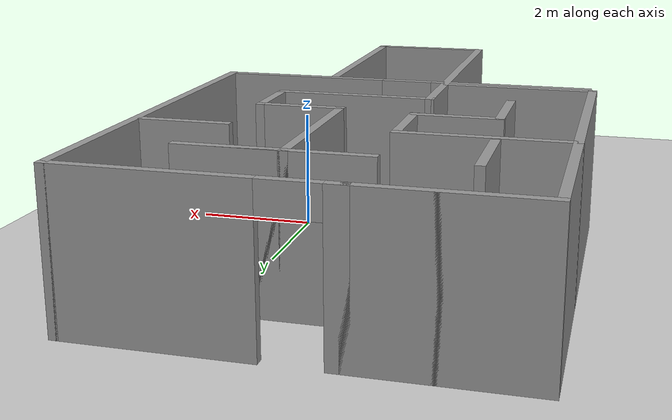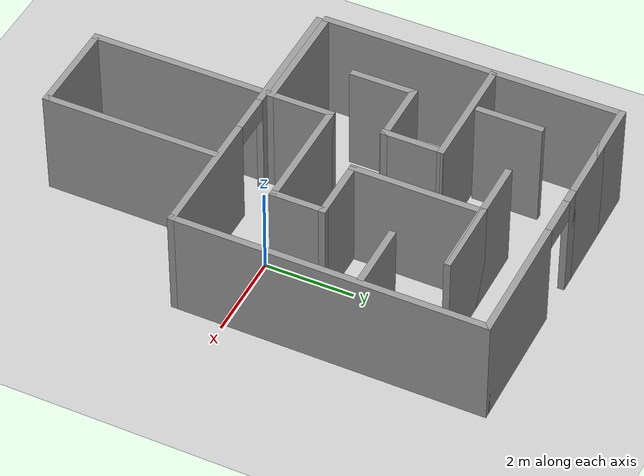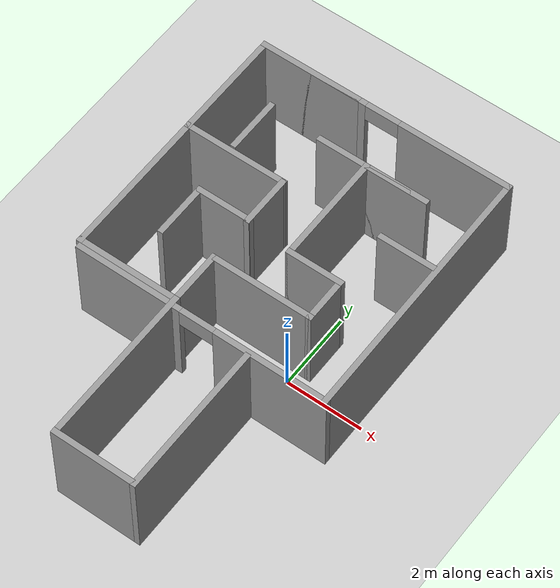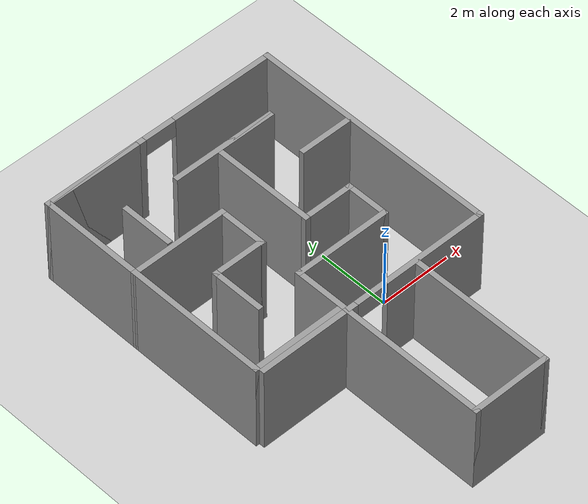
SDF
<sdf version="1.7">
 <world name="default">
  <light name="sun" type="directional">
   <pose>0 0 10 0 -0 0</pose>
   <diffuse>0.8 0.8 0.8 1</diffuse>
   <specular>0.2 0.2 0.2 1</specular>
   <attenuation>
    <range>1000</range>
    <constant>0.9</constant>
    <linear>0.01</linear>
    <quadratic>0.001</quadratic>
   </attenuation>
   <direction>-0.5 0.1 -0.9</direction>
   <spot><inner_angle>0</inner_angle><outer_angle>0</outer_angle><falloff>0</falloff></spot>
  </light>
  <model name="ground_plane">
   <static>1</static>
   <link name="link">
    <collision name="collision">
     <geometry><plane><normal>0 0 1</normal><size>100 100</size></plane></geometry>
     <surface><friction><ode><mu>100</mu><mu2>50</mu2></ode></friction></surface>
    </collision>
    <visual name="visual">
     <cast_shadows>0</cast_shadows>
     <geometry><plane><normal>0 0 1</normal><size>100 100</size></plane></geometry>
     <material>
      <script><uri>file://media/materials/scripts/gazebo.material</uri><name>Gazebo/Grey</name></script>
     </material>
    </visual>
   </link>
  </model>
  <gravity>0 0 -9.8</gravity>
  <magnetic_field>6e-06 2.3e-05 -4.2e-05</magnetic_field>
  <atmosphere type="adiabatic"/>
  <physics type="ode">
   <max_step_size>0.001</max_step_size>
   <real_time_factor>1</real_time_factor>
   <real_time_update_rate>1000</real_time_update_rate>
  </physics>
  <scene><ambient>0.4 0.4 0.4 1</ambient><background>0.7 0.7 0.7 1</background><shadows>1</shadows></scene>
  <audio><device>default</device></audio>
  <spherical_coordinates>
   <surface_model>EARTH_WGS84</surface_model>
   <latitude_deg>0</latitude_deg>
   <longitude_deg>0</longitude_deg>
   <elevation>0</elevation>
   <heading_deg>0</heading_deg>
  </spherical_coordinates>
  <model name="maze.world">
   <pose>-1.53103 0.328624 0 0 -0 0</pose>
   <link name="Wall_0">
    <collision name="Wall_0_Collision">
     <geometry><box><size>2.75 0.15 2.5</size></box></geometry>
     <pose>0 0 1.25 0 -0 0</pose>
    </collision>
    <visual name="Wall_0_Visual">
     <pose>0 0 1.25 0 -0 0</pose>
     <geometry><box><size>2.75 0.15 2.5</size></box></geometry>
     <material>
      <script><uri>file://media/materials/scripts/gazebo.material</uri><name>Gazebo/Grey</name></script>
      <ambient>1 1 1 1</ambient>
     </material>
     <meta><layer>0</layer></meta>
    </visual>
    <pose>-2.04992 5.4 0 0 -0 3.14159</pose>
   </link>
   <link name="Wall_1">
    <collision name="Wall_1_Collision">
     <geometry><box><size>3 0.15 2.5</size></box></geometry>
     <pose>0 0 1.25 0 -0 0</pose>
    </collision>
    <visual name="Wall_1_Visual">
     <pose>0 0 1.25 0 -0 0</pose>
     <geometry><box><size>3 0.15 2.5</size></box></geometry>
     <material>
      <script><uri>file://media/materials/scripts/gazebo.material</uri><name>Gazebo/Grey</name></script>
      <ambient>1 1 1 1</ambient>
     </material>
     <meta><layer>0</layer></meta>
    </visual>
    <pose>-3.34992 3.975 0 0 -0 -1.5708</pose>
   </link>
   <link name="Wall_10">
    <collision name="Wall_10_Collision">
     <geometry><box><size>2.75 0.15 2.5</size></box></geometry>
     <pose>0 0 1.25 0 -0 0</pose>
    </collision>
    <visual name="Wall_10_Visual">
     <pose>0 0 1.25 0 -0 0</pose>
     <geometry><box><size>2.75 0.15 2.5</size></box></geometry>
     <material>
      <script><uri>file://media/materials/scripts/gazebo.material</uri><name>Gazebo/Grey</name></script>
      <ambient>1 1 1 1</ambient>
     </material>
     <meta><layer>0</layer></meta>
    </visual>
    <pose>0.550079 0.05 0 0 -0 0</pose>
   </link>
   <link name="Wall_11">
    <collision name="Wall_11_Collision">
     <geometry><box><size>1.25 0.15 2.5</size></box></geometry>
     <pose>0 0 1.25 0 -0 0</pose>
    </collision>
    <visual name="Wall_11_Visual">
     <pose>0 0 1.25 0 -0 0</pose>
     <geometry><box><size>1.25 0.15 2.5</size></box></geometry>
     <material>
      <script><uri>file://media/materials/scripts/gazebo.material</uri><name>Gazebo/Grey</name></script>
      <ambient>1 1 1 1</ambient>
     </material>
     <meta><layer>0</layer></meta>
    </visual>
    <pose>1.85008 0.6 0 0 -0 1.5708</pose>
   </link>
   <link name="Wall_12">
    <collision name="Wall_12_Collision">
     <geometry><box><size>1.5 0.15 2.5</size></box></geometry>
     <pose>0 0 1.25 0 -0 0</pose>
    </collision>
    <visual name="Wall_12_Visual">
     <pose>0 0 1.25 0 -0 0</pose>
     <geometry><box><size>1.5 0.15 2.5</size></box></geometry>
     <material>
      <script><uri>file://media/materials/scripts/gazebo.material</uri><name>Gazebo/Grey</name></script>
      <ambient>1 1 1 1</ambient>
     </material>
     <meta><layer>0</layer></meta>
    </visual>
    <pose>1.17508 1.15 0 0 -0 3.14159</pose>
   </link>
   <link name="Wall_13">
    <collision name="Wall_13_Collision">
     <geometry><box><size>3 0.15 2.5</size></box></geometry>
     <pose>0 0 1.25 0 -0 0</pose>
    </collision>
    <visual name="Wall_13_Visual">
     <pose>0 0 1.25 0 -0 0</pose>
     <geometry><box><size>3 0.15 2.5</size></box></geometry>
     <material>
      <script><uri>file://media/materials/scripts/gazebo.material</uri><name>Gazebo/Grey</name></script>
      <ambient>1 1 1 1</ambient>
     </material>
     <meta><layer>0</layer></meta>
    </visual>
    <pose>0.500079 2.575 0 0 -0 1.5708</pose>
   </link>
   <link name="Wall_14">
    <collision name="Wall_14_Collision">
     <geometry><box><size>1.75 0.15 2.5</size></box></geometry>
     <pose>0 0 1.25 0 -0 0</pose>
    </collision>
    <visual name="Wall_14_Visual">
     <pose>0 0 1.25 0 -0 0</pose>
     <geometry><box><size>1.75 0.15 2.5</size></box></geometry>
     <material>
      <script><uri>file://media/materials/scripts/gazebo.material</uri><name>Gazebo/Grey</name></script>
      <ambient>1 1 1 1</ambient>
     </material>
     <meta><layer>0</layer></meta>
    </visual>
    <pose>1.30008 4 0 0 -0 0</pose>
   </link>
   <link name="Wall_15">
    <collision name="Wall_15_Collision">
     <geometry><box><size>3 0.15 2.5</size></box></geometry>
     <pose>0 0 1.25 0 -0 0</pose>
    </collision>
    <visual name="Wall_15_Visual">
     <pose>0 0 1.25 0 -0 0</pose>
     <geometry><box><size>3 0.15 2.5</size></box></geometry>
     <material>
      <script><uri>file://media/materials/scripts/gazebo.material</uri><name>Gazebo/Grey</name></script>
      <ambient>1 1 1 1</ambient>
     </material>
     <meta><layer>0</layer></meta>
    </visual>
    <pose>0.675079 4 0 0 -0 3.14159</pose>
   </link>
   <link name="Wall_17">
    <collision name="Wall_17_Collision">
     <geometry><box><size>2.75 0.15 2.5</size></box></geometry>
     <pose>0 0 1.25 0 -0 0</pose>
    </collision>
    <visual name="Wall_17_Visual">
     <pose>0 0 1.25 0 -0 0</pose>
     <geometry><box><size>2.75 0.15 2.5</size></box></geometry>
     <material>
      <script><uri>file://media/materials/scripts/gazebo.material</uri><name>Gazebo/Grey</name></script>
      <ambient>1 1 1 1</ambient>
     </material>
     <meta><layer>0</layer></meta>
    </visual>
    <pose>-2.04992 5.4 0 0 -0 0</pose>
   </link>
   <link name="Wall_18">
    <pose>1.30008 5.4 0 0 -0 0</pose>
    <visual name="Wall_18_Visual_0">
     <pose>-1.95395 0 1.25 0 -0 0</pose>
     <geometry><box><size>0.342093 0.15 2.5</size></box></geometry>
     <material>
      <script><uri>file://media/materials/scripts/gazebo.material</uri><name>Gazebo/Grey</name></script>
      <ambient>1 1 1 1</ambient>
     </material>
     <meta><layer>0</layer></meta>
    </visual>
    <collision name="Wall_18_Collision_0">
     <geometry><box><size>0.342093 0.15 2.5</size></box></geometry>
     <pose>-1.95395 0 1.25 0 -0 0</pose>
    </collision>
    <visual name="Wall_18_Visual_1">
     <pose>0.621046 0 1.25 0 -0 0</pose>
     <geometry><box><size>3.00791 0.15 2.5</size></box></geometry>
     <material>
      <script><uri>file://media/materials/scripts/gazebo.material</uri><name>Gazebo/Grey</name></script>
      <ambient>1 1 1 1</ambient>
     </material>
     <meta><layer>0</layer></meta>
    </visual>
    <collision name="Wall_18_Collision_1">
     <geometry><box><size>3.00791 0.15 2.5</size></box></geometry>
     <pose>0.621046 0 1.25 0 -0 0</pose>
    </collision>
    <visual name="Wall_18_Visual_2">
     <pose>-1.33291 0 2.25 0 -0 0</pose>
     <geometry><box><size>0.9 0.15 0.5</size></box></geometry>
     <material>
      <script><uri>file://media/materials/scripts/gazebo.material</uri><name>Gazebo/Grey</name></script>
      <ambient>1 1 1 1</ambient>
     </material>
     <meta><layer>0</layer></meta>
    </visual>
    <collision name="Wall_18_Collision_2">
     <geometry><box><size>0.9 0.15 0.5</size></box></geometry>
     <pose>-1.33291 0 2.25 0 -0 0</pose>
    </collision>
   </link>
   <link name="Wall_19">
    <collision name="Wall_19_Collision">
     <geometry><box><size>7 0.15 2.5</size></box></geometry>
     <pose>0 0 1.25 0 -0 0</pose>
    </collision>
    <visual name="Wall_19_Visual">
     <pose>0 0 1.25 0 -0 0</pose>
     <geometry><box><size>7 0.15 2.5</size></box></geometry>
     <material>
      <script><uri>file://media/materials/scripts/gazebo.material</uri><name>Gazebo/Grey</name></script>
      <ambient>1 1 1 1</ambient>
     </material>
     <meta><layer>0</layer></meta>
    </visual>
    <pose>3.35008 1.975 0 0 -0 -1.5708</pose>
   </link>
   <link name="Wall_2">
    <collision name="Wall_2_Collision">
     <geometry><box><size>2.76752 0.15 2.5</size></box></geometry>
     <pose>0 0 1.25 0 -0 0</pose>
    </collision>
    <visual name="Wall_2_Visual">
     <pose>0 0 1.25 0 -0 0</pose>
     <geometry><box><size>2.76752 0.15 2.5</size></box></geometry>
     <material>
      <script><uri>file://media/materials/scripts/gazebo.material</uri><name>Gazebo/Grey</name></script>
      <ambient>1 1 1 1</ambient>
     </material>
     <meta><layer>0</layer></meta>
    </visual>
    <pose>-2.04118 2.55257 0 0 -0 0.001963</pose>
   </link>
   <link name="Wall_20">
    <pose>0.050079 -1.45 0 0 -0 3.14159</pose>
    <visual name="Wall_20_Visual_0">
     <pose>-1.87105 0 1.25 0 -0 0</pose>
     <geometry><box><size>3.00791 0.15 2.5</size></box></geometry>
     <material>
      <script><uri>file://media/materials/scripts/gazebo.material</uri><name>Gazebo/Grey</name></script>
      <ambient>1 1 1 1</ambient>
     </material>
     <meta><layer>0</layer></meta>
    </visual>
    <collision name="Wall_20_Collision_0">
     <geometry><box><size>3.00791 0.15 2.5</size></box></geometry>
     <pose>-1.87105 0 1.25 0 -0 0</pose>
    </collision>
    <visual name="Wall_20_Visual_1">
     <pose>1.95395 0 1.25 0 -0 0</pose>
     <geometry><box><size>2.84209 0.15 2.5</size></box></geometry>
     <material>
      <script><uri>file://media/materials/scripts/gazebo.material</uri><name>Gazebo/Grey</name></script>
      <ambient>1 1 1 1</ambient>
     </material>
     <meta><layer>0</layer></meta>
    </visual>
    <collision name="Wall_20_Collision_1">
     <geometry><box><size>2.84209 0.15 2.5</size></box></geometry>
     <pose>1.95395 0 1.25 0 -0 0</pose>
    </collision>
    <visual name="Wall_20_Visual_2">
     <pose>0.082907 0 2.25 0 -0 0</pose>
     <geometry><box><size>0.9 0.15 0.5</size></box></geometry>
     <material>
      <script><uri>file://media/materials/scripts/gazebo.material</uri><name>Gazebo/Grey</name></script>
      <ambient>1 1 1 1</ambient>
     </material>
     <meta><layer>0</layer></meta>
    </visual>
    <collision name="Wall_20_Collision_2">
     <geometry><box><size>0.9 0.15 0.5</size></box></geometry>
     <pose>0.082907 0 2.25 0 -0 0</pose>
    </collision>
   </link>
   <link name="Wall_23">
    <collision name="Wall_23_Collision">
     <geometry><box><size>1.5 0.15 2.5</size></box></geometry>
     <pose>0 0 1.25 0 -0 0</pose>
    </collision>
    <visual name="Wall_23_Visual">
     <pose>0 0 1.25 0 -0 0</pose>
     <geometry><box><size>1.5 0.15 2.5</size></box></geometry>
     <material>
      <script><uri>file://media/materials/scripts/gazebo.material</uri><name>Gazebo/Grey</name></script>
      <ambient>1 1 1 1</ambient>
     </material>
     <meta><layer>0</layer></meta>
    </visual>
    <pose>2.54859 2.65406 0 0 -0 0</pose>
   </link>
   <link name="Wall_25">
    <collision name="Wall_25_Collision">
     <geometry><box><size>1.5 0.15 2.5</size></box></geometry>
     <pose>0 0 1.25 0 -0 0</pose>
    </collision>
    <visual name="Wall_25_Visual">
     <pose>0 0 1.25 0 -0 0</pose>
     <geometry><box><size>1.5 0.15 2.5</size></box></geometry>
     <material>
      <script><uri>file://media/materials/scripts/gazebo.material</uri><name>Gazebo/Grey</name></script>
      <ambient>1 1 1 1</ambient>
     </material>
     <meta><layer>0</layer></meta>
    </visual>
    <pose>-2.2016 3.41324 0 0 -0 -1.5708</pose>
   </link>
   <link name="Wall_27">
    <collision name="Wall_27_Collision">
     <geometry><box><size>4.25 0.15 2.5</size></box></geometry>
     <pose>0 0 1.25 0 -0 0</pose>
    </collision>
    <visual name="Wall_27_Visual">
     <pose>0 0 1.25 0 -0 0</pose>
     <geometry><box><size>4.25 0.15 2.5</size></box></geometry>
     <material>
      <script><uri>file://media/materials/scripts/gazebo.material</uri><name>Gazebo/Grey</name></script>
      <ambient>1 1 1 1</ambient>
     </material>
     <meta><layer>0</layer></meta>
    </visual>
    <pose>-0.749921 -3.35 0 0 -0 -1.5708</pose>
   </link>
   <link name="Wall_28">
    <collision name="Wall_28_Collision">
     <geometry><box><size>2.25 0.15 2.5</size></box></geometry>
     <pose>0 0 1.25 0 -0 0</pose>
    </collision>
    <visual name="Wall_28_Visual">
     <pose>0 0 1.25 0 -0 0</pose>
     <geometry><box><size>2.25 0.15 2.5</size></box></geometry>
     <material>
      <script><uri>file://media/materials/scripts/gazebo.material</uri><name>Gazebo/Grey</name></script>
      <ambient>1 1 1 1</ambient>
     </material>
     <meta><layer>0</layer></meta>
    </visual>
    <pose>0.300079 -5.4 0 0 -0 0</pose>
   </link>
   <link name="Wall_29">
    <collision name="Wall_29_Collision">
     <geometry><box><size>4 0.15 2.5</size></box></geometry>
     <pose>0 0 1.25 0 -0 0</pose>
    </collision>
    <visual name="Wall_29_Visual">
     <pose>0 0 1.25 0 -0 0</pose>
     <geometry><box><size>4 0.15 2.5</size></box></geometry>
     <material>
      <script><uri>file://media/materials/scripts/gazebo.material</uri><name>Gazebo/Grey</name></script>
      <ambient>1 1 1 1</ambient>
     </material>
     <meta><layer>0</layer></meta>
    </visual>
    <pose>1.35008 -3.475 0 0 -0 1.5708</pose>
   </link>
   <link name="Wall_3">
    <collision name="Wall_3_Collision">
     <geometry><box><size>1.40741 0.15 2.5</size></box></geometry>
     <pose>0 0 1.25 0 -0 0</pose>
    </collision>
    <visual name="Wall_3_Visual">
     <pose>0 0 1.25 0 -0 0</pose>
     <geometry><box><size>1.40741 0.15 2.5</size></box></geometry>
     <material>
      <script><uri>file://media/materials/scripts/gazebo.material</uri><name>Gazebo/Grey</name></script>
      <ambient>1 1 1 1</ambient>
     </material>
     <meta><layer>0</layer></meta>
    </visual>
    <pose>-0.732431 1.90894 0 0 -0 -1.5708</pose>
   </link>
   <link name="Wall_4">
    <collision name="Wall_4_Collision">
     <geometry><box><size>1.5 0.15 2.5</size></box></geometry>
     <pose>0 0 1.25 0 -0 0</pose>
    </collision>
    <visual name="Wall_4_Visual">
     <pose>0 0 1.25 0 -0 0</pose>
     <geometry><box><size>1.5 0.15 2.5</size></box></geometry>
     <material>
      <script><uri>file://media/materials/scripts/gazebo.material</uri><name>Gazebo/Grey</name></script>
      <ambient>1 1 1 1</ambient>
     </material>
     <meta><layer>0</layer></meta>
    </visual>
    <pose>-1.40743 1.29773 0 0 -0 3.14159</pose>
   </link>
   <link name="Wall_5">
    <collision name="Wall_5_Collision">
     <geometry><box><size>1.5 0.15 2.5</size></box></geometry>
     <pose>0 0 1.25 0 -0 0</pose>
    </collision>
    <visual name="Wall_5_Visual">
     <pose>0 0 1.25 0 -0 0</pose>
     <geometry><box><size>1.5 0.15 2.5</size></box></geometry>
     <material>
      <script><uri>file://media/materials/scripts/gazebo.material</uri><name>Gazebo/Grey</name></script>
      <ambient>1 1 1 1</ambient>
     </material>
     <meta><layer>0</layer></meta>
    </visual>
    <pose>-2.08243 0.622729 0 0 -0 -1.5708</pose>
   </link>
   <link name="Wall_7">
    <collision name="Wall_7_Collision">
     <geometry><box><size>4 0.15 2.5</size></box></geometry>
     <pose>0 0 1.25 0 -0 0</pose>
    </collision>
    <visual name="Wall_7_Visual">
     <pose>0 0 1.25 0 -0 0</pose>
     <geometry><box><size>4 0.15 2.5</size></box></geometry>
     <material>
      <script><uri>file://media/materials/scripts/gazebo.material</uri><name>Gazebo/Grey</name></script>
      <ambient>1 1 1 1</ambient>
     </material>
     <meta><layer>0</layer></meta>
    </visual>
    <pose>-3.34992 0.625 0 0 -0 -1.5708</pose>
   </link>
   <link name="Wall_8">
    <collision name="Wall_8_Collision">
     <geometry><box><size>2.75 0.15 2.5</size></box></geometry>
     <pose>0 0 1.25 0 -0 0</pose>
    </collision>
    <visual name="Wall_8_Visual">
     <pose>0 0 1.25 0 -0 0</pose>
     <geometry><box><size>2.75 0.15 2.5</size></box></geometry>
     <material>
      <script><uri>file://media/materials/scripts/gazebo.material</uri><name>Gazebo/Grey</name></script>
      <ambient>1 1 1 1</ambient>
     </material>
     <meta><layer>0</layer></meta>
    </visual>
    <pose>-2.04992 -1.3 0 0 -0 0</pose>
   </link>
   <link name="Wall_9">
    <collision name="Wall_9_Collision">
     <geometry><box><size>1.5 0.15 2.5</size></box></geometry>
     <pose>0 0 1.25 0 -0 0</pose>
    </collision>
    <visual name="Wall_9_Visual">
     <pose>0 0 1.25 0 -0 0</pose>
     <geometry><box><size>1.5 0.15 2.5</size></box></geometry>
     <material>
      <script><uri>file://media/materials/scripts/gazebo.material</uri><name>Gazebo/Grey</name></script>
      <ambient>1 1 1 1</ambient>
     </material>
     <meta><layer>0</layer></meta>
    </visual>
    <pose>-0.749921 -0.625 0 0 -0 1.5708</pose>
   </link>
   <static>1</static>
  </model>
 </world>
</sdf>
